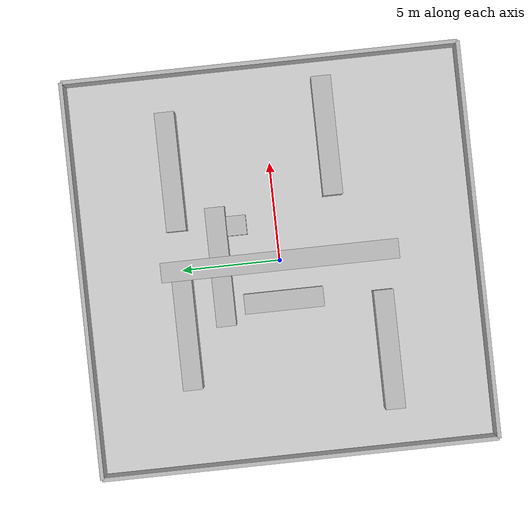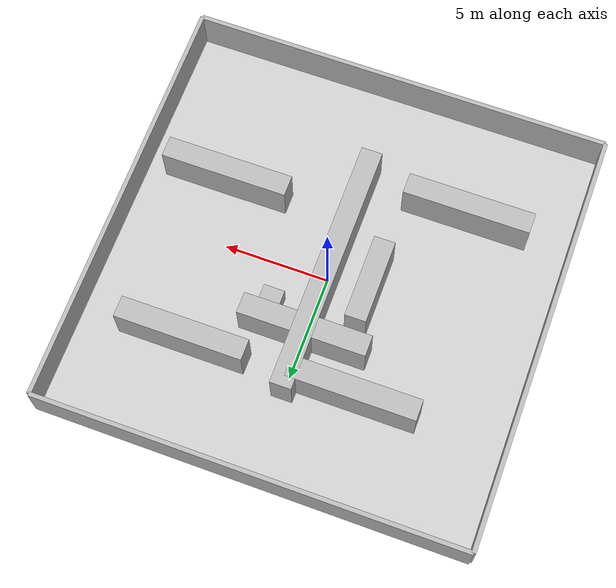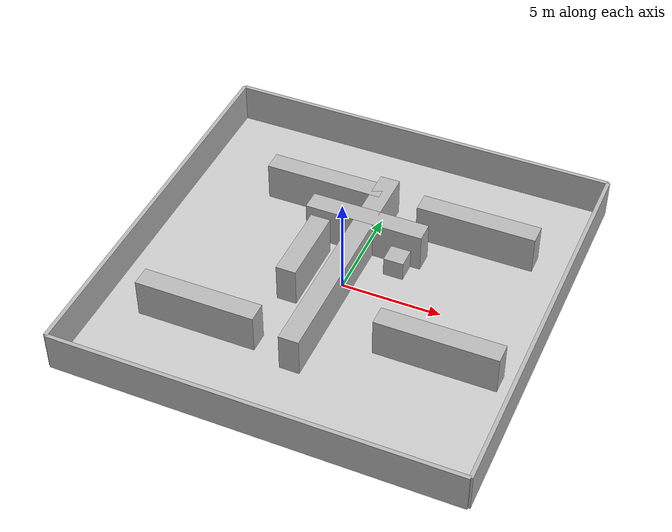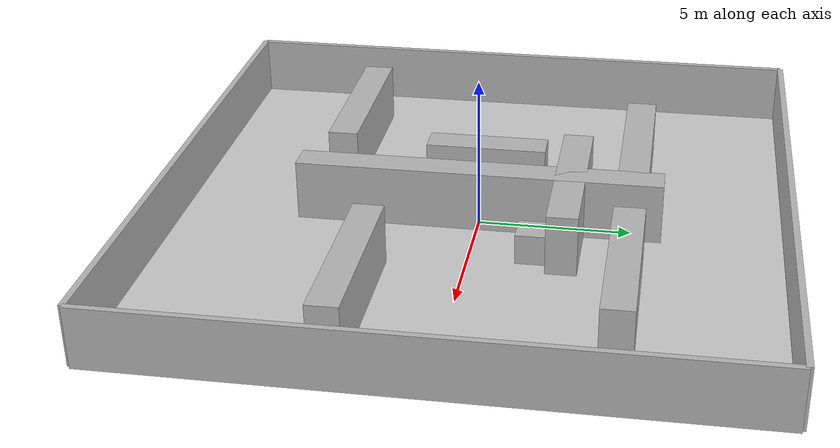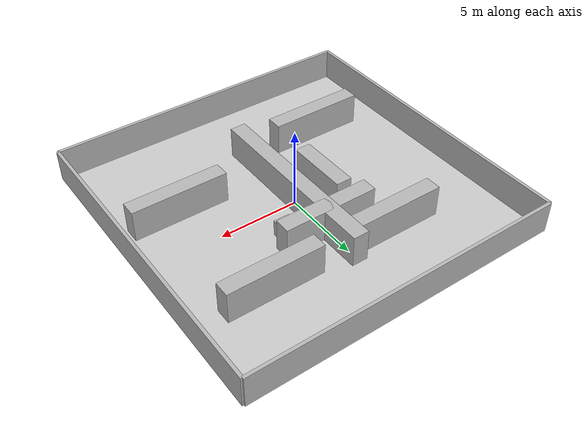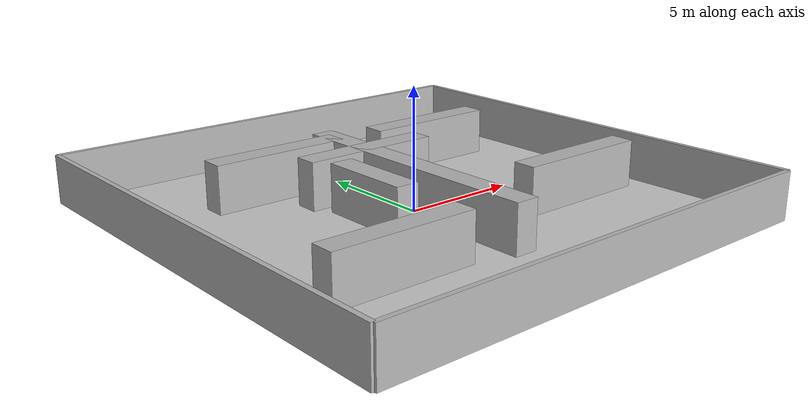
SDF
<?xml version="1.0"?>
<sdf version="1.6">
  <world name="warehouse">

    <!-- Physics -->
    <physics type="ode">
      <max_step_size>0.001</max_step_size>
      <real_time_factor>1.0</real_time_factor>
      <real_time_update_rate>1000</real_time_update_rate>
    </physics>

    <!-- Light -->
    <include>
      <uri>model://sun</uri>
    </include>

    <!-- Ground -->
    <include>
      <uri>model://ground_plane</uri>
    </include>

    <!-- Floor -->
    <model name="warehouse_floor">
      <static>true</static>
      <link name="floor">
        <visual name="visual">
          <geometry>
            <plane>
              <size>20 20</size>
            </plane>
          </geometry>
        </visual>
      </link>
    </model>

    <!-- Walls -->
    <model name="wall_north">
      <static>true</static>
      <pose>0 10 1 0 0 0</pose>
      <link name="link">
        <collision name="c"><geometry><box><size>20 0.2 2</size></box></geometry></collision>
        <visual name="v"><geometry><box><size>20 0.2 2</size></box></geometry></visual>
      </link>
    </model>

    <model name="wall_south">
      <static>true</static>
      <pose>0 -10 1 0 0 0</pose>
      <link name="link">
        <collision name="c"><geometry><box><size>20 0.2 2</size></box></geometry></collision>
        <visual name="v"><geometry><box><size>20 0.2 2</size></box></geometry></visual>
      </link>
    </model>

    <model name="wall_east">
      <static>true</static>
      <pose>10 0 1 0 0 0</pose>
      <link name="link">
        <collision name="c"><geometry><box><size>0.2 20 2</size></box></geometry></collision>
        <visual name="v"><geometry><box><size>0.2 20 2</size></box></geometry></visual>
      </link>
    </model>

    <model name="wall_west">
      <static>true</static>
      <pose>-10 0 1 0 0 0</pose>
      <link name="link">
        <collision name="c"><geometry><box><size>0.2 20 2</size></box></geometry></collision>
        <visual name="v"><geometry><box><size>0.2 20 2</size></box></geometry></visual>
      </link>
    </model>

    <!-- CENTRAL DIVIDER -->
    <model name="central_divider">
      <static>true</static>
      <pose>0 0 1 0 0 0</pose>
      <link name="link">
        <collision name="c"><geometry><box><size>1 12 2</size></box></geometry></collision>
        <visual name="v"><geometry><box><size>1 12 2</size></box></geometry></visual>
      </link>
    </model>

    <!-- LEFT SHELVES (modified) -->
    <model name="shelf_1">
      <static>true</static>
      <pose>-3 5 1 0 0 0</pose>
      <link name="link">
        <collision name="c"><geometry><box><size>6 1 2</size></box></geometry></collision>
        <visual name="v"><geometry><box><size>6 1 2</size></box></geometry></visual>
      </link>
    </model>

    <model name="shelf_2">
      <static>true</static>
      <pose>-5 -5 1 0 0 0</pose>
      <link name="link">
        <collision name="c"><geometry><box><size>6 1 2</size></box></geometry></collision>
        <visual name="v"><geometry><box><size>6 1 2</size></box></geometry></visual>
      </link>
    </model>

    <!-- RIGHT SHELVES (asymmetric) -->
    <model name="shelf_3">
      <static>true</static>
      <pose>5 5 1 0 0 0</pose>
      <link name="link">
        <collision name="c"><geometry><box><size>6 1 2</size></box></geometry></collision>
        <visual name="v"><geometry><box><size>6 1 2</size></box></geometry></visual>
      </link>
    </model>

    <model name="shelf_4">
      <static>true</static>
      <pose>6 -3 1 0 0 0</pose>
      <link name="link">
        <collision name="c"><geometry><box><size>6 1 2</size></box></geometry></collision>
        <visual name="v"><geometry><box><size>6 1 2</size></box></geometry></visual>
      </link>
    </model>

    <!-- JUNCTION -->
    <model name="junction_block">
      <static>true</static>
      <pose>0 3 1 0 0 0</pose>
      <link name="link">
        <collision name="c"><geometry><box><size>6 1 2</size></box></geometry></collision>
        <visual name="v"><geometry><box><size>6 1 2</size></box></geometry></visual>
      </link>
    </model>

    <!-- NARROW PASSAGE -->
    <model name="narrow_block">
      <static>true</static>
      <pose>-2 0 1 0 0 0</pose>
      <link name="link">
        <collision name="c"><geometry><box><size>1 4 2</size></box></geometry></collision>
        <visual name="v"><geometry><box><size>1 4 2</size></box></geometry></visual>
      </link>
    </model>

    <!-- RANDOM OBSTACLE -->
    <model name="box_obstacle">
      <static>true</static>
      <pose>2 2 0.5 0 0 0</pose>
      <link name="link">
        <collision name="c"><geometry><box><size>1 1 1</size></box></geometry></collision>
        <visual name="v"><geometry><box><size>1 1 1</size></box></geometry></visual>
      </link>
    </model>

  </world>
</sdf>
